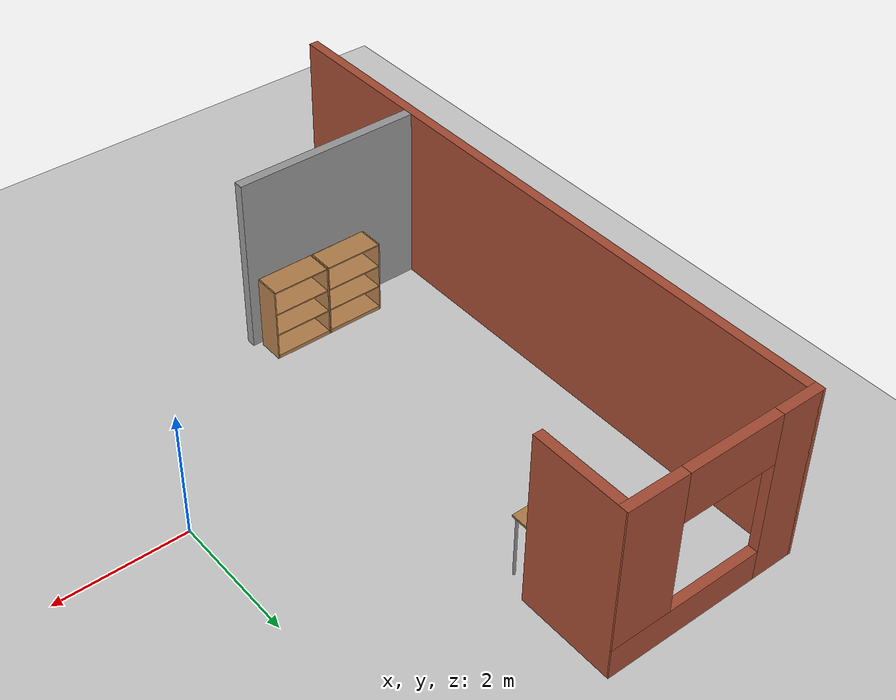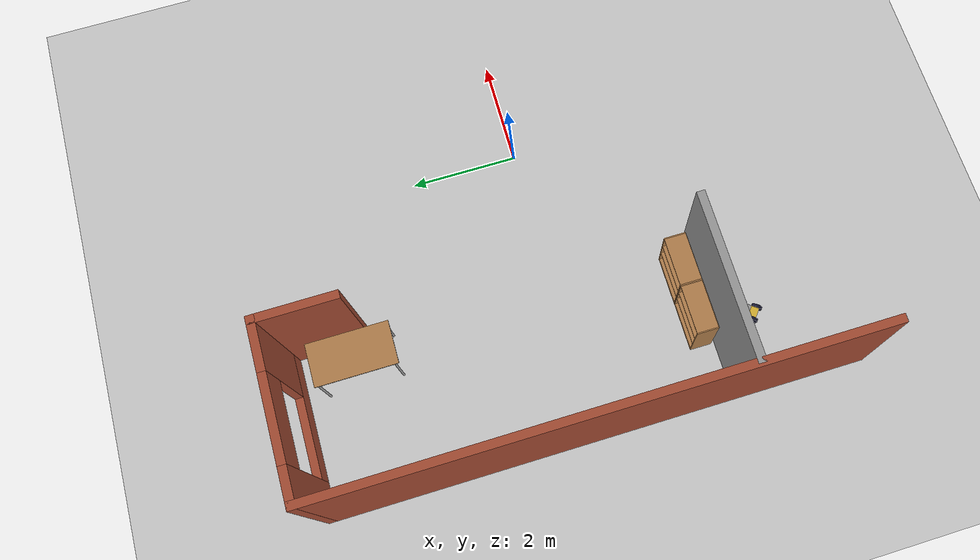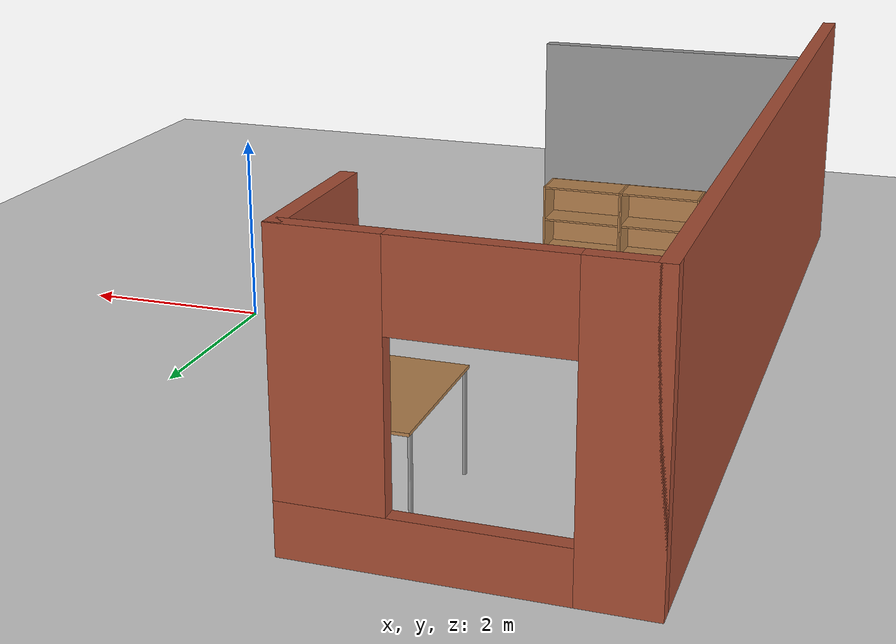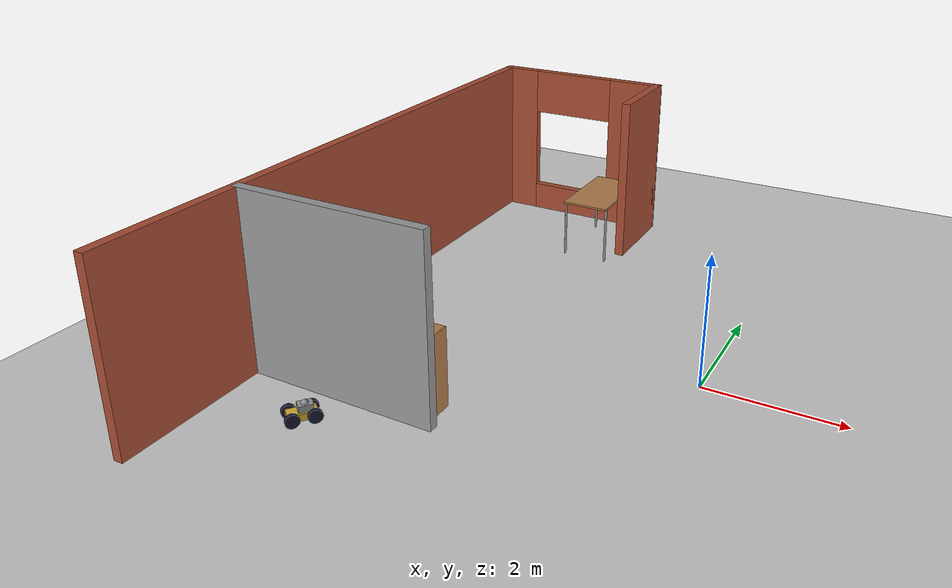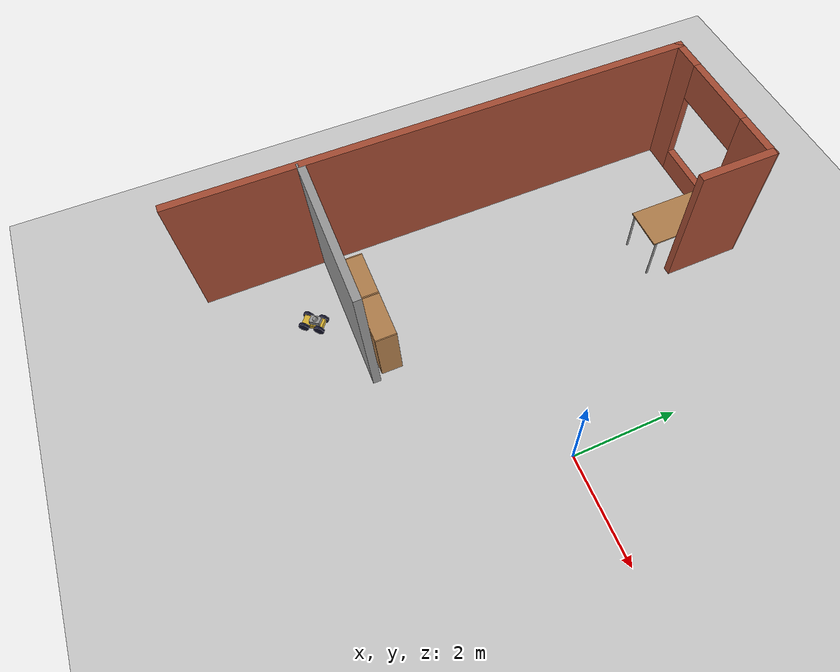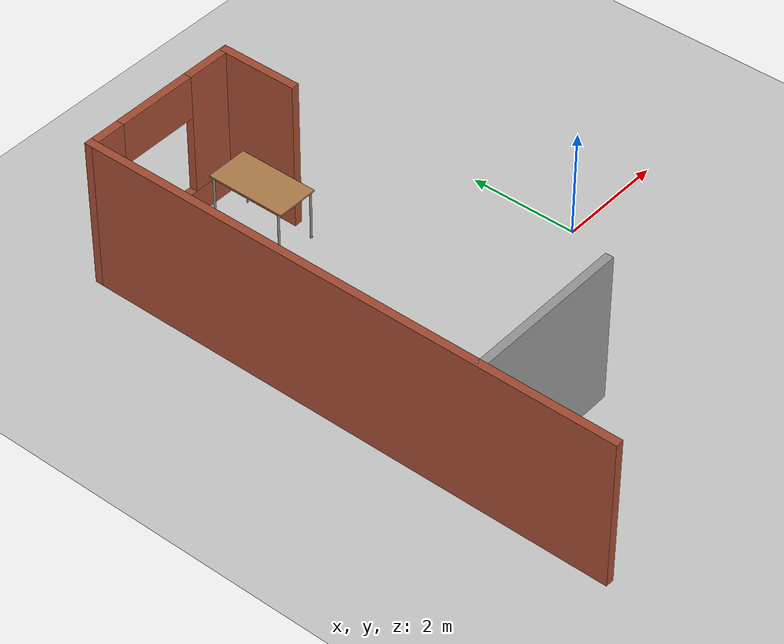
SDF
<sdf version="1.6">
 <world name="default">
  <model name="ground_plane">
   <static>1</static>
   <link name="link">
    <collision name="collision">
     <geometry><plane><normal>0 0 1</normal><size>100 100</size></plane></geometry>
     <surface>
      <contact><collide_bitmask>65535</collide_bitmask></contact>
      <friction><ode><mu>100</mu><mu2>50</mu2></ode></friction>
     </surface>
    </collision>
    <visual name="visual">
     <cast_shadows>0</cast_shadows>
     <geometry><plane><normal>0 0 1</normal><size>100 100</size></plane></geometry>
     <material>
      <script><uri>file://media/materials/scripts/gazebo.material</uri><name>Gazebo/Grey</name></script>
     </material>
    </visual>
   </link>
  </model>
  <model name="house">
   <link name="Wall_12">
    <pose>-2.65056 4.228 0 0 0 -1.5708</pose>
    <visual name="Wall_12_Visual">
     <pose>0 0 1.4 0 -0 0</pose>
     <geometry><box><size>1.5 0.15 2.8</size></box></geometry>
     <material>
      <script><uri>file://media/materials/scripts/gazebo.material</uri><name>Gazebo/Bricks</name></script>
      <ambient>1 1 1 1</ambient>
      <shader type="pixel"/>
     </material>
     <meta><layer>0</layer></meta>
    </visual>
    <collision name="Wall_12_Collision">
     <pose>0 0 1.4 0 -0 0</pose>
     <geometry><box><size>1.5 0.15 2.8</size></box></geometry>
     <surface>
      <friction>
       <ode><mu>1</mu><mu2>1</mu2><fdir1>0 0 0</fdir1><slip1>0</slip1><slip2>0</slip2></ode>
       <torsional>
        <coefficient>1</coefficient>
        <patch_radius>0</patch_radius>
        <surface_radius>0</surface_radius>
        <use_patch_radius>1</use_patch_radius>
        <ode><slip>0</slip></ode>
       </torsional>
      </friction>
      <bounce><restitution_coefficient>0</restitution_coefficient><threshold>1e+06</threshold></bounce>
      <contact>
       <collide_without_contact>0</collide_without_contact>
       <collide_without_contact_bitmask>1</collide_without_contact_bitmask>
       <collide_bitmask>1</collide_bitmask>
       <ode>
        <soft_cfm>0</soft_cfm>
        <soft_erp>0.2</soft_erp>
        <kp>1e+13</kp>
        <kd>1</kd>
        <max_vel>0.01</max_vel>
        <min_depth>0</min_depth>
       </ode>
       <bullet>
        <split_impulse>1</split_impulse>
        <split_impulse_penetration_threshold>-0.01</split_impulse_penetration_threshold>
        <soft_cfm>0</soft_cfm>
        <soft_erp>0.2</soft_erp>
        <kp>1e+13</kp>
        <kd>1</kd>
       </bullet>
      </contact>
     </surface>
    </collision>
   </link>
   <link name="Wall_2">
    <pose>-4.15056 4.925 0 0 -0 0</pose>
    <visual name="Wall_2_Visual_0">
     <pose>-1.22601 0 1.4 0 -0 0</pose>
     <geometry><box><size>0.697976 0.15 2.8</size></box></geometry>
     <material>
      <script><uri>file://media/materials/scripts/gazebo.material</uri><name>Gazebo/Bricks</name></script>
      <ambient>1 1 1 1</ambient>
      <shader type="pixel"/>
     </material>
     <meta><layer>0</layer></meta>
    </visual>
    <visual name="Wall_2_Visual_1">
     <pose>0.348988 0 0.25 0 -0 0</pose>
     <geometry><box><size>2.45202 0.15 0.5</size></box></geometry>
     <material>
      <script><uri>file://media/materials/scripts/gazebo.material</uri><name>Gazebo/Bricks</name></script>
      <ambient>1 1 1 1</ambient>
      <shader type="pixel"/>
     </material>
     <meta><layer>0</layer></meta>
    </visual>
    <visual name="Wall_2_Visual_2">
     <pose>1.09899 0 1.65 0 -0 0</pose>
     <geometry><box><size>0.952024 0.15 2.3</size></box></geometry>
     <material>
      <script><uri>file://media/materials/scripts/gazebo.material</uri><name>Gazebo/Bricks</name></script>
      <ambient>1 1 1 1</ambient>
      <shader type="pixel"/>
     </material>
     <meta><layer>0</layer></meta>
    </visual>
    <visual name="Wall_2_Visual_3">
     <pose>-0.127024 0 2.4 0 -0 0</pose>
     <geometry><box><size>1.5 0.15 0.8</size></box></geometry>
     <material>
      <script><uri>file://media/materials/scripts/gazebo.material</uri><name>Gazebo/Bricks</name></script>
      <ambient>1 1 1 1</ambient>
      <shader type="pixel"/>
     </material>
     <meta><layer>0</layer></meta>
    </visual>
    <collision name="Wall_2_Collision_1">
     <pose>0.348988 0 0.25 0 -0 0</pose>
     <geometry><box><size>2.45202 0.15 0.5</size></box></geometry>
     <surface>
      <friction>
       <ode><mu>1</mu><mu2>1</mu2><fdir1>0 0 0</fdir1><slip1>0</slip1><slip2>0</slip2></ode>
       <torsional>
        <coefficient>1</coefficient>
        <patch_radius>0</patch_radius>
        <surface_radius>0</surface_radius>
        <use_patch_radius>1</use_patch_radius>
        <ode><slip>0</slip></ode>
       </torsional>
      </friction>
      <bounce><restitution_coefficient>0</restitution_coefficient><threshold>1e+06</threshold></bounce>
      <contact>
       <collide_without_contact>0</collide_without_contact>
       <collide_without_contact_bitmask>1</collide_without_contact_bitmask>
       <collide_bitmask>1</collide_bitmask>
       <ode>
        <soft_cfm>0</soft_cfm>
        <soft_erp>0.2</soft_erp>
        <kp>1e+13</kp>
        <kd>1</kd>
        <max_vel>0.01</max_vel>
        <min_depth>0</min_depth>
       </ode>
       <bullet>
        <split_impulse>1</split_impulse>
        <split_impulse_penetration_threshold>-0.01</split_impulse_penetration_threshold>
        <soft_cfm>0</soft_cfm>
        <soft_erp>0.2</soft_erp>
        <kp>1e+13</kp>
        <kd>1</kd>
       </bullet>
      </contact>
     </surface>
    </collision>
    <collision name="Wall_2_Collision_0">
     <pose>-1.22601 0 1.4 0 -0 0</pose>
     <geometry><box><size>0.697976 0.15 2.8</size></box></geometry>
     <surface>
      <friction>
       <ode><mu>1</mu><mu2>1</mu2><fdir1>0 0 0</fdir1><slip1>0</slip1><slip2>0</slip2></ode>
       <torsional>
        <coefficient>1</coefficient>
        <patch_radius>0</patch_radius>
        <surface_radius>0</surface_radius>
        <use_patch_radius>1</use_patch_radius>
        <ode><slip>0</slip></ode>
       </torsional>
      </friction>
      <bounce><restitution_coefficient>0</restitution_coefficient><threshold>1e+06</threshold></bounce>
      <contact>
       <collide_without_contact>0</collide_without_contact>
       <collide_without_contact_bitmask>1</collide_without_contact_bitmask>
       <collide_bitmask>1</collide_bitmask>
       <ode>
        <soft_cfm>0</soft_cfm>
        <soft_erp>0.2</soft_erp>
        <kp>1e+13</kp>
        <kd>1</kd>
        <max_vel>0.01</max_vel>
        <min_depth>0</min_depth>
       </ode>
       <bullet>
        <split_impulse>1</split_impulse>
        <split_impulse_penetration_threshold>-0.01</split_impulse_penetration_threshold>
        <soft_cfm>0</soft_cfm>
        <soft_erp>0.2</soft_erp>
        <kp>1e+13</kp>
        <kd>1</kd>
       </bullet>
      </contact>
     </surface>
    </collision>
    <collision name="Wall_2_Collision_2">
     <pose>1.09899 0 1.65 0 -0 0</pose>
     <geometry><box><size>0.952024 0.15 2.3</size></box></geometry>
     <surface>
      <friction>
       <ode><mu>1</mu><mu2>1</mu2><fdir1>0 0 0</fdir1><slip1>0</slip1><slip2>0</slip2></ode>
       <torsional>
        <coefficient>1</coefficient>
        <patch_radius>0</patch_radius>
        <surface_radius>0</surface_radius>
        <use_patch_radius>1</use_patch_radius>
        <ode><slip>0</slip></ode>
       </torsional>
      </friction>
      <bounce><restitution_coefficient>0</restitution_coefficient><threshold>1e+06</threshold></bounce>
      <contact>
       <collide_without_contact>0</collide_without_contact>
       <collide_without_contact_bitmask>1</collide_without_contact_bitmask>
       <collide_bitmask>1</collide_bitmask>
       <ode>
        <soft_cfm>0</soft_cfm>
        <soft_erp>0.2</soft_erp>
        <kp>1e+13</kp>
        <kd>1</kd>
        <max_vel>0.01</max_vel>
        <min_depth>0</min_depth>
       </ode>
       <bullet>
        <split_impulse>1</split_impulse>
        <split_impulse_penetration_threshold>-0.01</split_impulse_penetration_threshold>
        <soft_cfm>0</soft_cfm>
        <soft_erp>0.2</soft_erp>
        <kp>1e+13</kp>
        <kd>1</kd>
       </bullet>
      </contact>
     </surface>
    </collision>
    <collision name="Wall_2_Collision_3">
     <pose>-0.127024 0 2.4 0 -0 0</pose>
     <geometry><box><size>1.5 0.15 0.8</size></box></geometry>
     <surface>
      <friction>
       <ode><mu>1</mu><mu2>1</mu2><fdir1>0 0 0</fdir1><slip1>0</slip1><slip2>0</slip2></ode>
       <torsional>
        <coefficient>1</coefficient>
        <patch_radius>0</patch_radius>
        <surface_radius>0</surface_radius>
        <use_patch_radius>1</use_patch_radius>
        <ode><slip>0</slip></ode>
       </torsional>
      </friction>
      <bounce><restitution_coefficient>0</restitution_coefficient><threshold>1e+06</threshold></bounce>
      <contact>
       <collide_without_contact>0</collide_without_contact>
       <collide_without_contact_bitmask>1</collide_without_contact_bitmask>
       <collide_bitmask>1</collide_bitmask>
       <ode>
        <soft_cfm>0</soft_cfm>
        <soft_erp>0.2</soft_erp>
        <kp>1e+13</kp>
        <kd>1</kd>
        <max_vel>0.01</max_vel>
        <min_depth>0</min_depth>
       </ode>
       <bullet>
        <split_impulse>1</split_impulse>
        <split_impulse_penetration_threshold>-0.01</split_impulse_penetration_threshold>
        <soft_cfm>0</soft_cfm>
        <soft_erp>0.2</soft_erp>
        <kp>1e+13</kp>
        <kd>1</kd>
       </bullet>
      </contact>
     </surface>
    </collision>
   </link>
   <link name="Wall_46">
    <pose>-4.17156 -2.583 0 0 -0 0</pose>
    <visual name="Wall_46_Visual">
     <pose>0 0 1.4 0 -0 0</pose>
     <geometry><box><size>3 0.15 2.8</size></box></geometry>
     <material>
      <script><uri>file://media/materials/scripts/gazebo.material</uri><name>Gazebo/Grey</name></script>
      <ambient>1 1 1 1</ambient>
      <shader type="pixel"/>
     </material>
     <meta><layer>0</layer></meta>
    </visual>
    <collision name="Wall_46_Collision">
     <pose>0 0 1.4 0 -0 0</pose>
     <geometry><box><size>3 0.15 2.8</size></box></geometry>
     <surface>
      <friction>
       <ode><mu>1</mu><mu2>1</mu2><fdir1>0 0 0</fdir1><slip1>0</slip1><slip2>0</slip2></ode>
       <torsional>
        <coefficient>1</coefficient>
        <patch_radius>0</patch_radius>
        <surface_radius>0</surface_radius>
        <use_patch_radius>1</use_patch_radius>
        <ode><slip>0</slip></ode>
       </torsional>
      </friction>
      <bounce><restitution_coefficient>0</restitution_coefficient><threshold>1e+06</threshold></bounce>
      <contact>
       <collide_without_contact>0</collide_without_contact>
       <collide_without_contact_bitmask>1</collide_without_contact_bitmask>
       <collide_bitmask>1</collide_bitmask>
       <ode>
        <soft_cfm>0</soft_cfm>
        <soft_erp>0.2</soft_erp>
        <kp>1e+13</kp>
        <kd>1</kd>
        <max_vel>0.01</max_vel>
        <min_depth>0</min_depth>
       </ode>
       <bullet>
        <split_impulse>1</split_impulse>
        <split_impulse_penetration_threshold>-0.01</split_impulse_penetration_threshold>
        <soft_cfm>0</soft_cfm>
        <soft_erp>0.2</soft_erp>
        <kp>1e+13</kp>
        <kd>1</kd>
       </bullet>
      </contact>
     </surface>
    </collision>
   </link>
   <link name="Wall_7">
    <pose>-5.65056 0 0 0 0 -1.5708</pose>
    <inertial>
     <mass>1</mass>
     <inertia><ixx>1</ixx><ixy>0</ixy><ixz>0</ixz><iyy>1</iyy><iyz>0</iyz><izz>1</izz></inertia>
    </inertial>
    <visual name="Wall_7_Visual">
     <pose>0 0 1.4 0 -0 0</pose>
     <geometry><box><size>10 0.15 2.8</size></box></geometry>
     <material>
      <script><uri>file://media/materials/scripts/gazebo.material</uri><name>Gazebo/Bricks</name></script>
      <ambient>1 1 1 1</ambient>
      <shader type="pixel"><normal_map>__default__</normal_map></shader>
      <diffuse>1 1 1 1</diffuse>
      <specular>0.2 0.2 0.2 1</specular>
      <emissive>0 0 0 1</emissive>
     </material>
     <meta><layer>0</layer></meta>
    </visual>
    <collision name="Wall_7_Collision">
     <pose>0 0 1.4 0 -0 0</pose>
     <geometry><box><size>10 0.15 2.8</size></box></geometry>
     <surface>
      <friction>
       <ode><mu>1</mu><mu2>1</mu2><fdir1>0 0 0</fdir1><slip1>0</slip1><slip2>0</slip2></ode>
       <torsional>
        <coefficient>1</coefficient>
        <patch_radius>0</patch_radius>
        <surface_radius>0</surface_radius>
        <use_patch_radius>1</use_patch_radius>
        <ode><slip>0</slip></ode>
       </torsional>
      </friction>
      <bounce><restitution_coefficient>0</restitution_coefficient><threshold>1e+06</threshold></bounce>
      <contact>
       <collide_without_contact>0</collide_without_contact>
       <collide_without_contact_bitmask>1</collide_without_contact_bitmask>
       <collide_bitmask>1</collide_bitmask>
       <ode>
        <soft_cfm>0</soft_cfm>
        <soft_erp>0.2</soft_erp>
        <kp>1e+13</kp>
        <kd>1</kd>
        <max_vel>0.01</max_vel>
        <min_depth>0</min_depth>
       </ode>
       <bullet>
        <split_impulse>1</split_impulse>
        <split_impulse_penetration_threshold>-0.01</split_impulse_penetration_threshold>
        <soft_cfm>0</soft_cfm>
        <soft_erp>0.2</soft_erp>
        <kp>1e+13</kp>
        <kd>1</kd>
       </bullet>
      </contact>
     </surface>
    </collision>
   </link>
   <static>1</static>
  </model>
  <model name="table">
   <static>1</static>
   <link name="link">
    <collision name="surface">
     <pose>0 0 1 0 -0 0</pose>
     <geometry><box><size>1.5 0.8 0.03</size></box></geometry>
     <surface><friction><ode><mu>0.6</mu><mu2>0.6</mu2></ode></friction></surface>
    </collision>
    <visual name="visual1">
     <pose>0 0 1 0 -0 0</pose>
     <geometry><box><size>1.5 0.8 0.03</size></box></geometry>
     <material>
      <script><uri>file://media/materials/scripts/gazebo.material</uri><name>Gazebo/Wood</name></script>
     </material>
    </visual>
    <collision name="front_left_leg">
     <pose>0.68 0.38 0.5 0 -0 0</pose>
     <geometry><cylinder><radius>0.02</radius><length>1</length></cylinder></geometry>
    </collision>
    <visual name="front_left_leg">
     <pose>0.68 0.38 0.5 0 -0 0</pose>
     <geometry><cylinder><radius>0.02</radius><length>1</length></cylinder></geometry>
     <material>
      <script><uri>file://media/materials/scripts/gazebo.material</uri><name>Gazebo/Grey</name></script>
     </material>
    </visual>
    <collision name="front_right_leg">
     <pose>0.68 -0.38 0.5 0 -0 0</pose>
     <geometry><cylinder><radius>0.02</radius><length>1</length></cylinder></geometry>
    </collision>
    <visual name="front_right_leg">
     <pose>0.68 -0.38 0.5 0 -0 0</pose>
     <geometry><cylinder><radius>0.02</radius><length>1</length></cylinder></geometry>
     <material>
      <script><uri>file://media/materials/scripts/gazebo.material</uri><name>Gazebo/Grey</name></script>
     </material>
    </visual>
    <collision name="back_right_leg">
     <pose>-0.68 -0.38 0.5 0 -0 0</pose>
     <geometry><cylinder><radius>0.02</radius><length>1</length></cylinder></geometry>
    </collision>
    <visual name="back_right_leg">
     <pose>-0.68 -0.38 0.5 0 -0 0</pose>
     <geometry><cylinder><radius>0.02</radius><length>1</length></cylinder></geometry>
     <material>
      <script><uri>file://media/materials/scripts/gazebo.material</uri><name>Gazebo/Grey</name></script>
     </material>
    </visual>
    <collision name="back_left_leg">
     <pose>-0.68 0.38 0.5 0 -0 0</pose>
     <geometry><cylinder><radius>0.02</radius><length>1</length></cylinder></geometry>
    </collision>
    <visual name="back_left_leg">
     <pose>-0.68 0.38 0.5 0 -0 0</pose>
     <geometry><cylinder><radius>0.02</radius><length>1</length></cylinder></geometry>
     <material>
      <script><uri>file://media/materials/scripts/gazebo.material</uri><name>Gazebo/Grey</name></script>
     </material>
    </visual>
   </link>
   <pose>-3.15516 3.78157 0 0 -0 1.57079</pose>
  </model>
  <model name="bookshelf">
   <static>1</static>
   <link name="link">
    <inertial><mass>1</mass></inertial>
    <collision name="back">
     <pose>0 0.005 0.6 0 -0 0</pose>
     <geometry><box><size>0.9 0.01 1.2</size></box></geometry>
    </collision>
    <visual name="visual1">
     <pose>0 0.005 0.6 0 -0 0</pose>
     <geometry><box><size>0.9 0.01 1.2</size></box></geometry>
     <material>
      <script><uri>file://media/materials/scripts/gazebo.material</uri><name>Gazebo/Wood</name></script>
     </material>
    </visual>
    <collision name="left_side">
     <pose>0.45 -0.195 0.6 0 -0 0</pose>
     <geometry><box><size>0.02 0.4 1.2</size></box></geometry>
    </collision>
    <visual name="visual2">
     <pose>0.45 -0.195 0.6 0 -0 0</pose>
     <geometry><box><size>0.02 0.4 1.2</size></box></geometry>
     <material>
      <script><uri>file://media/materials/scripts/gazebo.material</uri><name>Gazebo/Wood</name></script>
     </material>
    </visual>
    <collision name="right_side">
     <pose>-0.45 -0.195 0.6 0 -0 0</pose>
     <geometry><box><size>0.02 0.4 1.2</size></box></geometry>
    </collision>
    <visual name="visual3">
     <pose>-0.45 -0.195 0.6 0 -0 0</pose>
     <geometry><box><size>0.02 0.4 1.2</size></box></geometry>
     <material>
      <script><uri>file://media/materials/scripts/gazebo.material</uri><name>Gazebo/Wood</name></script>
     </material>
    </visual>
    <collision name="bottom">
     <pose>0 -0.195 0.03 0 -0 0</pose>
     <geometry><box><size>0.88 0.4 0.06</size></box></geometry>
    </collision>
    <visual name="visual4">
     <pose>0 -0.195 0.03 0 -0 0</pose>
     <geometry><box><size>0.88 0.4 0.06</size></box></geometry>
     <material>
      <script><uri>file://media/materials/scripts/gazebo.material</uri><name>Gazebo/Wood</name></script>
     </material>
    </visual>
    <collision name="top">
     <pose>0 -0.195 1.19 0 -0 0</pose>
     <geometry><box><size>0.88 0.4 0.02</size></box></geometry>
    </collision>
    <visual name="visual5">
     <pose>0 -0.195 1.19 0 -0 0</pose>
     <geometry><box><size>0.88 0.4 0.02</size></box></geometry>
     <material>
      <script><uri>file://media/materials/scripts/gazebo.material</uri><name>Gazebo/Wood</name></script>
     </material>
    </visual>
    <collision name="low_shelf">
     <pose>0 -0.195 0.43 0 -0 0</pose>
     <geometry><box><size>0.88 0.4 0.02</size></box></geometry>
    </collision>
    <visual name="visual6">
     <pose>0 -0.195 0.43 0 -0 0</pose>
     <geometry><box><size>0.88 0.4 0.02</size></box></geometry>
     <material>
      <script><uri>file://media/materials/scripts/gazebo.material</uri><name>Gazebo/Wood</name></script>
     </material>
    </visual>
    <collision name="high_shelf">
     <pose>0 -0.195 0.8 0 -0 0</pose>
     <geometry><box><size>0.88 0.4 0.02</size></box></geometry>
    </collision>
    <visual name="visual7">
     <pose>0 -0.195 0.8 0 -0 0</pose>
     <geometry><box><size>0.88 0.4 0.02</size></box></geometry>
     <material>
      <script><uri>file://media/materials/scripts/gazebo.material</uri><name>Gazebo/Wood</name></script>
     </material>
    </visual>
   </link>
   <pose>-3.25006 -2.44189 0 0 -0 3.14</pose>
  </model>
  <model name="bookshelf_clone">
   <static>1</static>
   <link name="link">
    <inertial><mass>1</mass></inertial>
    <collision name="back">
     <pose>0 0.005 0.6 0 -0 0</pose>
     <geometry><box><size>0.9 0.01 1.2</size></box></geometry>
    </collision>
    <visual name="visual1">
     <pose>0 0.005 0.6 0 -0 0</pose>
     <geometry><box><size>0.9 0.01 1.2</size></box></geometry>
     <material>
      <script><uri>file://media/materials/scripts/gazebo.material</uri><name>Gazebo/Wood</name></script>
     </material>
    </visual>
    <collision name="left_side">
     <pose>0.45 -0.195 0.6 0 -0 0</pose>
     <geometry><box><size>0.02 0.4 1.2</size></box></geometry>
    </collision>
    <visual name="visual2">
     <pose>0.45 -0.195 0.6 0 -0 0</pose>
     <geometry><box><size>0.02 0.4 1.2</size></box></geometry>
     <material>
      <script><uri>file://media/materials/scripts/gazebo.material</uri><name>Gazebo/Wood</name></script>
     </material>
    </visual>
    <collision name="right_side">
     <pose>-0.45 -0.195 0.6 0 -0 0</pose>
     <geometry><box><size>0.02 0.4 1.2</size></box></geometry>
    </collision>
    <visual name="visual3">
     <pose>-0.45 -0.195 0.6 0 -0 0</pose>
     <geometry><box><size>0.02 0.4 1.2</size></box></geometry>
     <material>
      <script><uri>file://media/materials/scripts/gazebo.material</uri><name>Gazebo/Wood</name></script>
     </material>
    </visual>
    <collision name="bottom">
     <pose>0 -0.195 0.03 0 -0 0</pose>
     <geometry><box><size>0.88 0.4 0.06</size></box></geometry>
    </collision>
    <visual name="visual4">
     <pose>0 -0.195 0.03 0 -0 0</pose>
     <geometry><box><size>0.88 0.4 0.06</size></box></geometry>
     <material>
      <script><uri>file://media/materials/scripts/gazebo.material</uri><name>Gazebo/Wood</name></script>
     </material>
    </visual>
    <collision name="top">
     <pose>0 -0.195 1.19 0 -0 0</pose>
     <geometry><box><size>0.88 0.4 0.02</size></box></geometry>
    </collision>
    <visual name="visual5">
     <pose>0 -0.195 1.19 0 -0 0</pose>
     <geometry><box><size>0.88 0.4 0.02</size></box></geometry>
     <material>
      <script><uri>file://media/materials/scripts/gazebo.material</uri><name>Gazebo/Wood</name></script>
     </material>
    </visual>
    <collision name="low_shelf">
     <pose>0 -0.195 0.43 0 -0 0</pose>
     <geometry><box><size>0.88 0.4 0.02</size></box></geometry>
    </collision>
    <visual name="visual6">
     <pose>0 -0.195 0.43 0 -0 0</pose>
     <geometry><box><size>0.88 0.4 0.02</size></box></geometry>
     <material>
      <script><uri>file://media/materials/scripts/gazebo.material</uri><name>Gazebo/Wood</name></script>
     </material>
    </visual>
    <collision name="high_shelf">
     <pose>0 -0.195 0.8 0 -0 0</pose>
     <geometry><box><size>0.88 0.4 0.02</size></box></geometry>
    </collision>
    <visual name="visual7">
     <pose>0 -0.195 0.8 0 -0 0</pose>
     <geometry><box><size>0.88 0.4 0.02</size></box></geometry>
     <material>
      <script><uri>file://media/materials/scripts/gazebo.material</uri><name>Gazebo/Wood</name></script>
     </material>
    </visual>
   </link>
   <pose>-4.16638 -2.44241 0 0 -0 3.14</pose>
  </model>
  <model name="robot_0">
   <link name="link_0">
    <pose>-0 -0 0.5 0 -0 0</pose>
    <inertial>
     <mass>1</mass>
     <inertia>
      <ixx>0.166667</ixx>
      <ixy>0</ixy>
      <ixz>0</ixz>
      <iyy>0.166667</iyy>
      <iyz>0</iyz>
      <izz>0.166667</izz>
     </inertia>
    </inertial>
    <visual name="visual">
     <geometry><box><size>0.4 0.2 0.1</size></box></geometry>
     <material>
      <lighting>1</lighting>
      <script><uri>file://media/materials/scripts/gazebo.material</uri><name>Gazebo/Gold</name></script>
      <shader type="pixel"><normal_map>__default__</normal_map></shader>
      <ambient>0.5 0.75 0 1</ambient>
      <diffuse>0.7 0.9 0 1</diffuse>
      <specular>0.2 0.2 0.2 1</specular>
      <emissive>0.1 0 0.1 1</emissive>
     </material>
    </visual>
    <collision name="collision">
     <geometry><box><size>0.4 0.2 0.1</size></box></geometry>
     <surface>
      <friction>
       <ode><mu>1</mu><mu2>1</mu2><fdir1>0 0 0</fdir1><slip1>0</slip1><slip2>0</slip2></ode>
       <torsional>
        <coefficient>1</coefficient>
        <patch_radius>0</patch_radius>
        <surface_radius>0</surface_radius>
        <use_patch_radius>1</use_patch_radius>
        <ode><slip>0</slip></ode>
       </torsional>
      </friction>
      <bounce><restitution_coefficient>0</restitution_coefficient><threshold>1e+06</threshold></bounce>
      <contact>
       <collide_without_contact>0</collide_without_contact>
       <collide_without_contact_bitmask>1</collide_without_contact_bitmask>
       <collide_bitmask>1</collide_bitmask>
       <ode>
        <soft_cfm>0</soft_cfm>
        <soft_erp>0.2</soft_erp>
        <kp>1e+13</kp>
        <kd>1</kd>
        <max_vel>0.01</max_vel>
        <min_depth>0</min_depth>
       </ode>
       <bullet>
        <split_impulse>1</split_impulse>
        <split_impulse_penetration_threshold>-0.01</split_impulse_penetration_threshold>
        <soft_cfm>0</soft_cfm>
        <soft_erp>0.2</soft_erp>
        <kp>1e+13</kp>
        <kd>1</kd>
       </bullet>
      </contact>
     </surface>
    </collision>
   </link>
   <link name="link_1">
    <pose>0.05 0 0.65 -2e-06 1.5e-05 -0.056012</pose>
    <inertial>
     <mass>1</mass>
     <inertia><ixx>0.1</ixx><ixy>0</ixy><ixz>0</ixz><iyy>0.1</iyy><iyz>0</iyz><izz>0.1</izz></inertia>
    </inertial>
    <visual name="visual">
     <geometry><sphere><radius>0.05</radius></sphere></geometry>
     <material>
      <lighting>1</lighting>
      <script><uri>file://media/materials/scripts/gazebo.material</uri><name>Gazebo/Grey</name></script>
      <shader type="pixel"><normal_map>__default__</normal_map></shader>
      <ambient>0 0 0 1</ambient>
      <diffuse>0 0 0 1</diffuse>
      <specular>0.01 0.01 0.01 1</specular>
      <emissive>0 1 0 1</emissive>
     </material>
    </visual>
    <collision name="collision">
     <geometry><sphere><radius>0.05</radius></sphere></geometry>
     <surface>
      <friction>
       <ode><mu>1</mu><mu2>1</mu2><fdir1>0 0 0</fdir1><slip1>0</slip1><slip2>0</slip2></ode>
       <torsional>
        <coefficient>1</coefficient>
        <patch_radius>0</patch_radius>
        <surface_radius>0</surface_radius>
        <use_patch_radius>1</use_patch_radius>
        <ode><slip>0</slip></ode>
       </torsional>
      </friction>
      <bounce><restitution_coefficient>0</restitution_coefficient><threshold>1e+06</threshold></bounce>
      <contact>
       <collide_without_contact>0</collide_without_contact>
       <collide_without_contact_bitmask>1</collide_without_contact_bitmask>
       <collide_bitmask>1</collide_bitmask>
       <ode>
        <soft_cfm>0</soft_cfm>
        <soft_erp>0.2</soft_erp>
        <kp>1e+13</kp>
        <kd>1</kd>
        <max_vel>0.01</max_vel>
        <min_depth>0</min_depth>
       </ode>
       <bullet>
        <split_impulse>1</split_impulse>
        <split_impulse_penetration_threshold>-0.01</split_impulse_penetration_threshold>
        <soft_cfm>0</soft_cfm>
        <soft_erp>0.2</soft_erp>
        <kp>1e+13</kp>
        <kd>1</kd>
       </bullet>
      </contact>
     </surface>
    </collision>
   </link>
   <link name="link_2">
    <pose>-0.15 -0.12501 0.5 1.5707 -0 0</pose>
    <inertial>
     <mass>1</mass>
     <inertia><ixx>0.145833</ixx><ixy>0</ixy><ixz>0</ixz><iyy>0.145833</iyy><iyz>0</iyz><izz>0.125</izz></inertia>
    </inertial>
    <visual name="visual">
     <geometry><cylinder><radius>0.1</radius><length>0.05</length></cylinder></geometry>
     <material>
      <lighting>1</lighting>
      <script><uri>file://media/materials/scripts/gazebo.material</uri><name>Gazebo/Grey</name></script>
      <shader type="pixel"><normal_map>__default__</normal_map></shader>
      <ambient>0.1 0.1 0.1 1</ambient>
      <diffuse>0.1 0.1 0.2 1</diffuse>
      <specular>0.01 0.01 0.01 1</specular>
      <emissive>0 0 0 1</emissive>
     </material>
    </visual>
    <collision name="collision">
     <geometry><cylinder><radius>0.1</radius><length>0.05</length></cylinder></geometry>
     <surface>
      <friction>
       <ode><mu>1</mu><mu2>1</mu2><fdir1>0 0 0</fdir1><slip1>0</slip1><slip2>0</slip2></ode>
       <torsional>
        <coefficient>1</coefficient>
        <patch_radius>0</patch_radius>
        <surface_radius>0</surface_radius>
        <use_patch_radius>1</use_patch_radius>
        <ode><slip>0</slip></ode>
       </torsional>
      </friction>
      <bounce><restitution_coefficient>0</restitution_coefficient><threshold>1e+06</threshold></bounce>
      <contact>
       <collide_without_contact>0</collide_without_contact>
       <collide_without_contact_bitmask>1</collide_without_contact_bitmask>
       <collide_bitmask>1</collide_bitmask>
       <ode>
        <soft_cfm>0</soft_cfm>
        <soft_erp>0.2</soft_erp>
        <kp>1e+13</kp>
        <kd>1</kd>
        <max_vel>0.01</max_vel>
        <min_depth>0</min_depth>
       </ode>
       <bullet>
        <split_impulse>1</split_impulse>
        <split_impulse_penetration_threshold>-0.01</split_impulse_penetration_threshold>
        <soft_cfm>0</soft_cfm>
        <soft_erp>0.2</soft_erp>
        <kp>1e+13</kp>
        <kd>1</kd>
       </bullet>
      </contact>
     </surface>
    </collision>
   </link>
   <link name="link_2_clone">
    <pose>0.15 -0.12501 0.5 1.5707 -0 0</pose>
    <inertial>
     <mass>1</mass>
     <inertia><ixx>0.145833</ixx><ixy>0</ixy><ixz>0</ixz><iyy>0.145833</iyy><iyz>0</iyz><izz>0.125</izz></inertia>
    </inertial>
    <visual name="visual">
     <geometry><cylinder><radius>0.1</radius><length>0.05</length></cylinder></geometry>
     <material>
      <lighting>1</lighting>
      <script><uri>file://media/materials/scripts/gazebo.material</uri><name>Gazebo/Grey</name></script>
      <shader type="pixel"><normal_map>__default__</normal_map></shader>
      <ambient>0.1 0.1 0.1 1</ambient>
      <diffuse>0.1 0.1 0.2 1</diffuse>
      <specular>0.01 0.01 0.01 1</specular>
      <emissive>0 0 0 1</emissive>
     </material>
    </visual>
    <collision name="collision">
     <geometry><cylinder><radius>0.1</radius><length>0.05</length></cylinder></geometry>
     <surface>
      <friction>
       <ode><mu>1</mu><mu2>1</mu2><fdir1>0 0 0</fdir1><slip1>0</slip1><slip2>0</slip2></ode>
       <torsional>
        <coefficient>1</coefficient>
        <patch_radius>0</patch_radius>
        <surface_radius>0</surface_radius>
        <use_patch_radius>1</use_patch_radius>
        <ode><slip>0</slip></ode>
       </torsional>
      </friction>
      <bounce><restitution_coefficient>0</restitution_coefficient><threshold>1e+06</threshold></bounce>
      <contact>
       <collide_without_contact>0</collide_without_contact>
       <collide_without_contact_bitmask>1</collide_without_contact_bitmask>
       <collide_bitmask>1</collide_bitmask>
       <ode>
        <soft_cfm>0</soft_cfm>
        <soft_erp>0.2</soft_erp>
        <kp>1e+13</kp>
        <kd>1</kd>
        <max_vel>0.01</max_vel>
        <min_depth>0</min_depth>
       </ode>
       <bullet>
        <split_impulse>1</split_impulse>
        <split_impulse_penetration_threshold>-0.01</split_impulse_penetration_threshold>
        <soft_cfm>0</soft_cfm>
        <soft_erp>0.2</soft_erp>
        <kp>1e+13</kp>
        <kd>1</kd>
       </bullet>
      </contact>
     </surface>
    </collision>
   </link>
   <link name="link_2_clone_0">
    <pose>0.15 0.1251 0.5 1.5707 -0 0</pose>
    <inertial>
     <mass>1</mass>
     <inertia><ixx>0.145833</ixx><ixy>0</ixy><ixz>0</ixz><iyy>0.145833</iyy><iyz>0</iyz><izz>0.125</izz></inertia>
    </inertial>
    <visual name="visual">
     <geometry><cylinder><radius>0.1</radius><length>0.05</length></cylinder></geometry>
     <material>
      <lighting>1</lighting>
      <script><uri>file://media/materials/scripts/gazebo.material</uri><name>Gazebo/Grey</name></script>
      <shader type="pixel"><normal_map>__default__</normal_map></shader>
      <ambient>0.1 0.1 0.1 1</ambient>
      <diffuse>0.1 0.1 0.2 1</diffuse>
      <specular>0.01 0.01 0.01 1</specular>
      <emissive>0 0 0 1</emissive>
     </material>
    </visual>
    <collision name="collision">
     <geometry><cylinder><radius>0.1</radius><length>0.05</length></cylinder></geometry>
     <surface>
      <friction>
       <ode><mu>1</mu><mu2>1</mu2><fdir1>0 0 0</fdir1><slip1>0</slip1><slip2>0</slip2></ode>
       <torsional>
        <coefficient>1</coefficient>
        <patch_radius>0</patch_radius>
        <surface_radius>0</surface_radius>
        <use_patch_radius>1</use_patch_radius>
        <ode><slip>0</slip></ode>
       </torsional>
      </friction>
      <bounce><restitution_coefficient>0</restitution_coefficient><threshold>1e+06</threshold></bounce>
      <contact>
       <collide_without_contact>0</collide_without_contact>
       <collide_without_contact_bitmask>1</collide_without_contact_bitmask>
       <collide_bitmask>1</collide_bitmask>
       <ode>
        <soft_cfm>0</soft_cfm>
        <soft_erp>0.2</soft_erp>
        <kp>1e+13</kp>
        <kd>1</kd>
        <max_vel>0.01</max_vel>
        <min_depth>0</min_depth>
       </ode>
       <bullet>
        <split_impulse>1</split_impulse>
        <split_impulse_penetration_threshold>-0.01</split_impulse_penetration_threshold>
        <soft_cfm>0</soft_cfm>
        <soft_erp>0.2</soft_erp>
        <kp>1e+13</kp>
        <kd>1</kd>
       </bullet>
      </contact>
     </surface>
    </collision>
   </link>
   <link name="link_2_clone_1">
    <pose>-0.15 0.12501 0.5 1.5707 -0 0</pose>
    <inertial>
     <mass>1</mass>
     <inertia><ixx>0.145833</ixx><ixy>0</ixy><ixz>0</ixz><iyy>0.145833</iyy><iyz>0</iyz><izz>0.125</izz></inertia>
    </inertial>
    <visual name="visual">
     <geometry><cylinder><radius>0.1</radius><length>0.05</length></cylinder></geometry>
     <material>
      <lighting>1</lighting>
      <script><uri>file://media/materials/scripts/gazebo.material</uri><name>Gazebo/Grey</name></script>
      <shader type="pixel"><normal_map>__default__</normal_map></shader>
      <ambient>0.1 0.1 0.1 1</ambient>
      <diffuse>0.1 0.1 0.2 1</diffuse>
      <specular>0 0 0 1</specular>
      <emissive>0 0 0 1</emissive>
     </material>
    </visual>
    <collision name="collision">
     <geometry><cylinder><radius>0.1</radius><length>0.05</length></cylinder></geometry>
     <surface>
      <friction>
       <ode><mu>1</mu><mu2>1</mu2><fdir1>0 0 0</fdir1><slip1>0</slip1><slip2>0</slip2></ode>
       <torsional>
        <coefficient>1</coefficient>
        <patch_radius>0</patch_radius>
        <surface_radius>0</surface_radius>
        <use_patch_radius>1</use_patch_radius>
        <ode><slip>0</slip></ode>
       </torsional>
      </friction>
      <bounce><restitution_coefficient>0</restitution_coefficient><threshold>1e+06</threshold></bounce>
      <contact>
       <collide_without_contact>0</collide_without_contact>
       <collide_without_contact_bitmask>1</collide_without_contact_bitmask>
       <collide_bitmask>1</collide_bitmask>
       <ode>
        <soft_cfm>0</soft_cfm>
        <soft_erp>0.2</soft_erp>
        <kp>1e+13</kp>
        <kd>1</kd>
        <max_vel>0.01</max_vel>
        <min_depth>0</min_depth>
       </ode>
       <bullet>
        <split_impulse>1</split_impulse>
        <split_impulse_penetration_threshold>-0.01</split_impulse_penetration_threshold>
        <soft_cfm>0</soft_cfm>
        <soft_erp>0.2</soft_erp>
        <kp>1e+13</kp>
        <kd>1</kd>
       </bullet>
      </contact>
     </surface>
    </collision>
   </link>
   <link name="link_5">
    <pose>0.05 -0 0.6 0 -0 0</pose>
    <inertial>
     <mass>1</mass>
     <inertia>
      <ixx>0.166667</ixx>
      <ixy>0</ixy>
      <ixz>0</ixz>
      <iyy>0.166667</iyy>
      <iyz>0</iyz>
      <izz>0.166667</izz>
     </inertia>
    </inertial>
    <visual name="visual">
     <geometry><box><size>0.2 0.15 0.1</size></box></geometry>
     <material>
      <lighting>1</lighting>
      <script><uri>file://media/materials/scripts/gazebo.material</uri><name>Gazebo/Grey</name></script>
      <shader type="pixel"><normal_map>__default__</normal_map></shader>
      <ambient>0.5 0.5 0.5 1</ambient>
      <diffuse>0.7 0.7 0.7 1</diffuse>
      <specular>0.2 0.2 0.2 1</specular>
      <emissive>0 0 0 1</emissive>
     </material>
    </visual>
    <collision name="collision">
     <geometry><box><size>0.2 0.15 0.1</size></box></geometry>
     <surface>
      <friction>
       <ode><mu>1</mu><mu2>1</mu2><fdir1>0 0 0</fdir1><slip1>0</slip1><slip2>0</slip2></ode>
       <torsional>
        <coefficient>1</coefficient>
        <patch_radius>0</patch_radius>
        <surface_radius>0</surface_radius>
        <use_patch_radius>1</use_patch_radius>
        <ode><slip>0</slip></ode>
       </torsional>
      </friction>
      <bounce><restitution_coefficient>0</restitution_coefficient><threshold>1e+06</threshold></bounce>
      <contact>
       <collide_without_contact>0</collide_without_contact>
       <collide_without_contact_bitmask>1</collide_without_contact_bitmask>
       <collide_bitmask>1</collide_bitmask>
       <ode>
        <soft_cfm>0</soft_cfm>
        <soft_erp>0.2</soft_erp>
        <kp>1e+13</kp>
        <kd>1</kd>
        <max_vel>0.01</max_vel>
        <min_depth>0</min_depth>
       </ode>
       <bullet>
        <split_impulse>1</split_impulse>
        <split_impulse_penetration_threshold>-0.01</split_impulse_penetration_threshold>
        <soft_cfm>0</soft_cfm>
        <soft_erp>0.2</soft_erp>
        <kp>1e+13</kp>
        <kd>1</kd>
       </bullet>
      </contact>
     </surface>
    </collision>
   </link>
   <joint name="link_0_JOINT_0" type="revolute">
    <parent>link_0</parent>
    <child>link_2</child>
    <axis>
     <xyz>0 0 1</xyz>
     <use_parent_model_frame>0</use_parent_model_frame>
     <limit>
      <lower>-1.79769e+308</lower>
      <upper>1.79769e+308</upper>
      <effort>-1</effort>
      <velocity>-1</velocity>
     </limit>
     <dynamics>
      <spring_reference>0</spring_reference>
      <spring_stiffness>0</spring_stiffness>
      <damping>0</damping>
      <friction>0</friction>
     </dynamics>
    </axis>
    <physics>
     <ode><limit><cfm>0</cfm><erp>0.2</erp></limit><suspension><cfm>0</cfm><erp>0.2</erp></suspension></ode>
    </physics>
   </joint>
   <joint name="link_0_JOINT_1_0" type="revolute">
    <parent>link_0</parent>
    <child>link_2_clone_0</child>
    <axis>
     <xyz>0 0 1</xyz>
     <use_parent_model_frame>0</use_parent_model_frame>
     <limit>
      <lower>-1.79769e+308</lower>
      <upper>1.79769e+308</upper>
      <effort>-1</effort>
      <velocity>-1</velocity>
     </limit>
     <dynamics>
      <spring_reference>0</spring_reference>
      <spring_stiffness>0</spring_stiffness>
      <damping>0</damping>
      <friction>0</friction>
     </dynamics>
    </axis>
    <physics>
     <ode><limit><cfm>0</cfm><erp>0.2</erp></limit><suspension><cfm>0</cfm><erp>0.2</erp></suspension></ode>
    </physics>
   </joint>
   <joint name="link_0_JOINT_1" type="revolute">
    <parent>link_0</parent>
    <child>link_2_clone</child>
    <axis>
     <xyz>0 0 1</xyz>
     <use_parent_model_frame>0</use_parent_model_frame>
     <limit>
      <lower>-1.79769e+308</lower>
      <upper>1.79769e+308</upper>
      <effort>-1</effort>
      <velocity>-1</velocity>
     </limit>
     <dynamics>
      <spring_reference>0</spring_reference>
      <spring_stiffness>0</spring_stiffness>
      <damping>0</damping>
      <friction>0</friction>
     </dynamics>
    </axis>
    <physics>
     <ode><limit><cfm>0</cfm><erp>0.2</erp></limit><suspension><cfm>0</cfm><erp>0.2</erp></suspension></ode>
    </physics>
   </joint>
   <joint name="link_0_JOINT_2" type="revolute">
    <parent>link_0</parent>
    <child>link_2_clone_1</child>
    <axis>
     <xyz>0 0 1</xyz>
     <use_parent_model_frame>0</use_parent_model_frame>
     <limit>
      <lower>-1.79769e+308</lower>
      <upper>1.79769e+308</upper>
      <effort>-1</effort>
      <velocity>-1</velocity>
     </limit>
     <dynamics>
      <spring_reference>0</spring_reference>
      <spring_stiffness>0</spring_stiffness>
      <damping>0</damping>
      <friction>0</friction>
     </dynamics>
    </axis>
    <physics>
     <ode><limit><cfm>0</cfm><erp>0.2</erp></limit><suspension><cfm>0</cfm><erp>0.2</erp></suspension></ode>
    </physics>
   </joint>
   <joint name="link_0_JOINT_3" type="fixed">
    <parent>link_0</parent>
    <child>link_5</child>
    <physics>
     <ode><limit><cfm>0</cfm><erp>0.2</erp></limit><suspension><cfm>0</cfm><erp>0.2</erp></suspension></ode>
    </physics>
   </joint>
   <joint name="link_5_JOINT_0" type="fixed">
    <parent>link_5</parent>
    <child>link_1</child>
    <physics>
     <ode><limit><cfm>0</cfm><erp>0.2</erp></limit><suspension><cfm>0</cfm><erp>0.2</erp></suspension></ode>
    </physics>
   </joint>
   <static>0</static>
   <pose>-4.24698 -3.2665 -0.374998 -2e-06 -1e-06 0.909668</pose>
  </model>
 </world>
</sdf>
